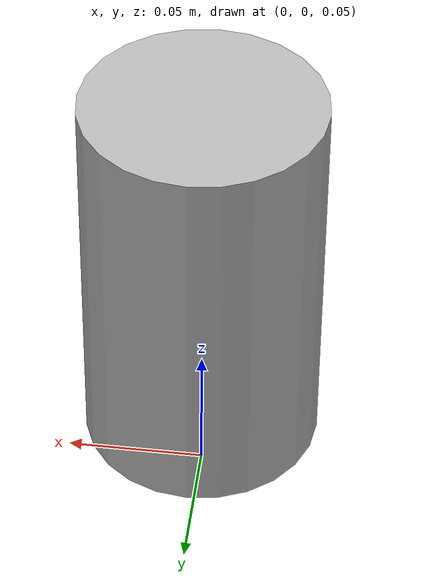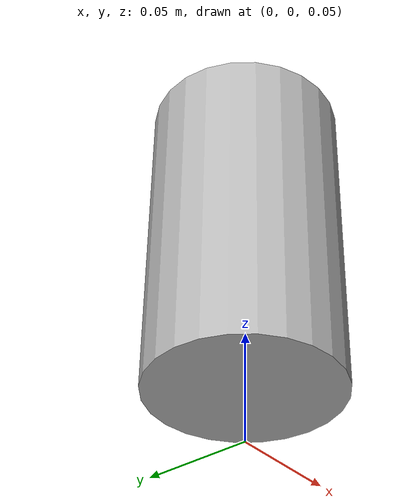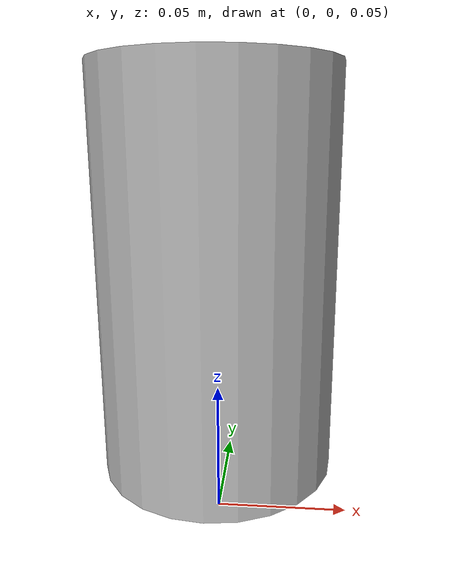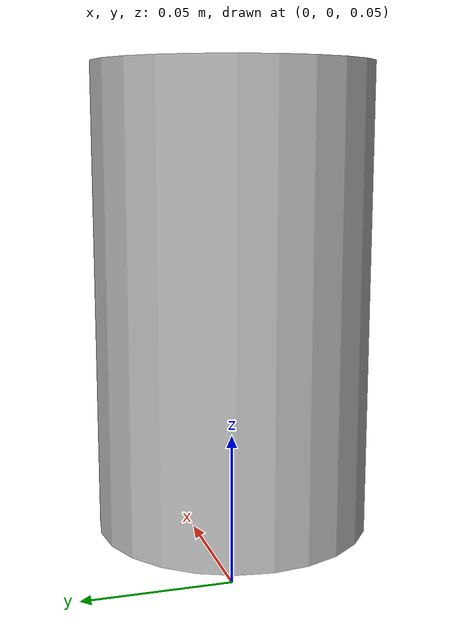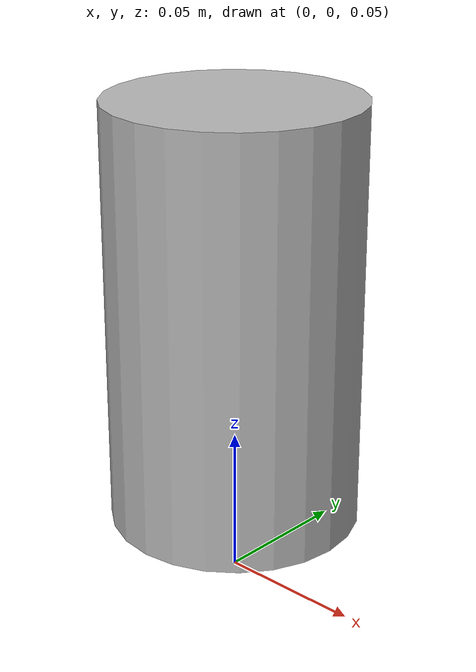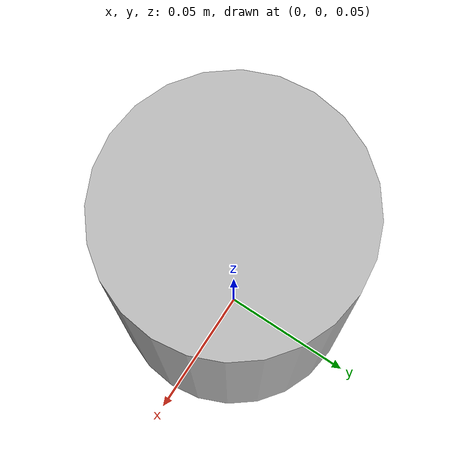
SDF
<?xml version="1.0" encoding="UTF-8"?>
<!-- This sdf copies the values used in the velodyne_description urdf file. -->
<sdf version="1.7">
    <model name="velodyne_hdl-32">
        <!-- Give the base link a unique name -->
        <link name="velodyne_base_link">
            <pose>0 0 0.07212 0 0 0</pose>
            <inertial>
                <mass>1.0</mass>
                <inertia>
                    <ixx>0.002188947</ixx>
                    <iyy>0.002188947</iyy>
                    <izz>0.000910364</izz>
                    <ixy>0</ixy>
                    <ixz>0</ixz>
                    <iyz>0</iyz>
                </inertia>
            </inertial>

            <collision name="velodyne_base_link_collision">
                <pose>0 0 0.07212 0 0 0</pose>
                <geometry>
                    <cylinder>
                        <!-- Radius and length provided by Velodyne -->
                        <radius>.04267</radius>
                        <length>.14424</length>
                    </cylinder>
                </geometry>
            </collision>

            <!-- The visual is mostly a copy of the collision -->
            <visual name="velodyne_base_link_visual">
                <pose>0 0 0.07212 0 0 0</pose>
                <geometry>
                    <cylinder>
                        <radius>.04267</radius>
                        <length>.14424</length>
                    </cylinder>
                </geometry>
            </visual>
        </link>

        <joint type="fixed" name="velodyne_base2scan_joint">
            <!-- Position the joint at the bottom of the top link -->
            <pose>0 0 0.09081 0 0 0</pose>
            <parent>velodyne_base_link</parent>
            <child>velodyne_scan_link</child>
        </joint>

        <!-- Give the scan link a unique name -->
        <link name="velodyne_scan_link">
            <pose>0 0 0 0 0 0</pose>
            <inertial>
                <mass>0.01</mass>
                <inertia>
                    <ixx>0.0000001</ixx>
                    <iyy>0.0000001</iyy>
                    <izz>0.0000001</izz>
                    <ixy>0</ixy>
                    <ixz>0</ixz>
                    <iyz>0</iyz>
                </inertia>
            </inertial>

            <!-- Ray sensor values obtained from the velodyne_simulator package -->
            <sensor type="ray" name="sensor">
                <!-- Position the ray sensor based on the specification. -->
                <pose>0 0 0.004645 0 0 0</pose>
                <visualize>false</visualize>
                <!-- Set the update rate of the sensor in hz. -->
                <update_rate>10</update_rate>

                <ray>
                    <!-- The scan element contains the horizontal and vertical beams. -->
                    <scan>
                        <horizontal>
                            <samples>200</samples>
                            <resolution>1</resolution>
                            <min_angle>-3.1415927</min_angle>
                            <max_angle>3.1415927</max_angle>
                        </horizontal>
                        <vertical>
                            <samples>1</samples>
                            <resolution>32</resolution>
                            <min_angle>-0.53529248</min_angle>
                            <max_angle>0.18622663</max_angle>
                        </vertical>
                    </scan>

                    <!-- Range defines characteristics of an individual beam -->
                    <range>
                        <!-- Minimum distance of the beam -->
                        <min>0.3</min>
                        <!-- Maximum distance of the beam -->
                        <max>130.0</max>
                        <!-- Linear resolution of the beam -->
                        <resolution>0.001</resolution>
                    </range>
                    <noise>
                        <type>gaussian</type>
                        <mean>0.0</mean>
                        <stddev>0.0</stddev>
                    </noise>
                </ray>

                <!-- Laser Plugin -->
                <plugin name="gazebo_ros_laser_controller" filename="libgazebo_ros_velodyne_laser.so">
                    <topicName>/velodyne_points2</topicName>
                    <frameName>/velodyne</frameName>
                    <min_range>0.3</min_range>
                    <max_range>130.0</max_range>
                    <gaussianNoise>0.008</gaussianNoise>
                </plugin>
            </sensor>
        </link>
    </model>
</sdf>
